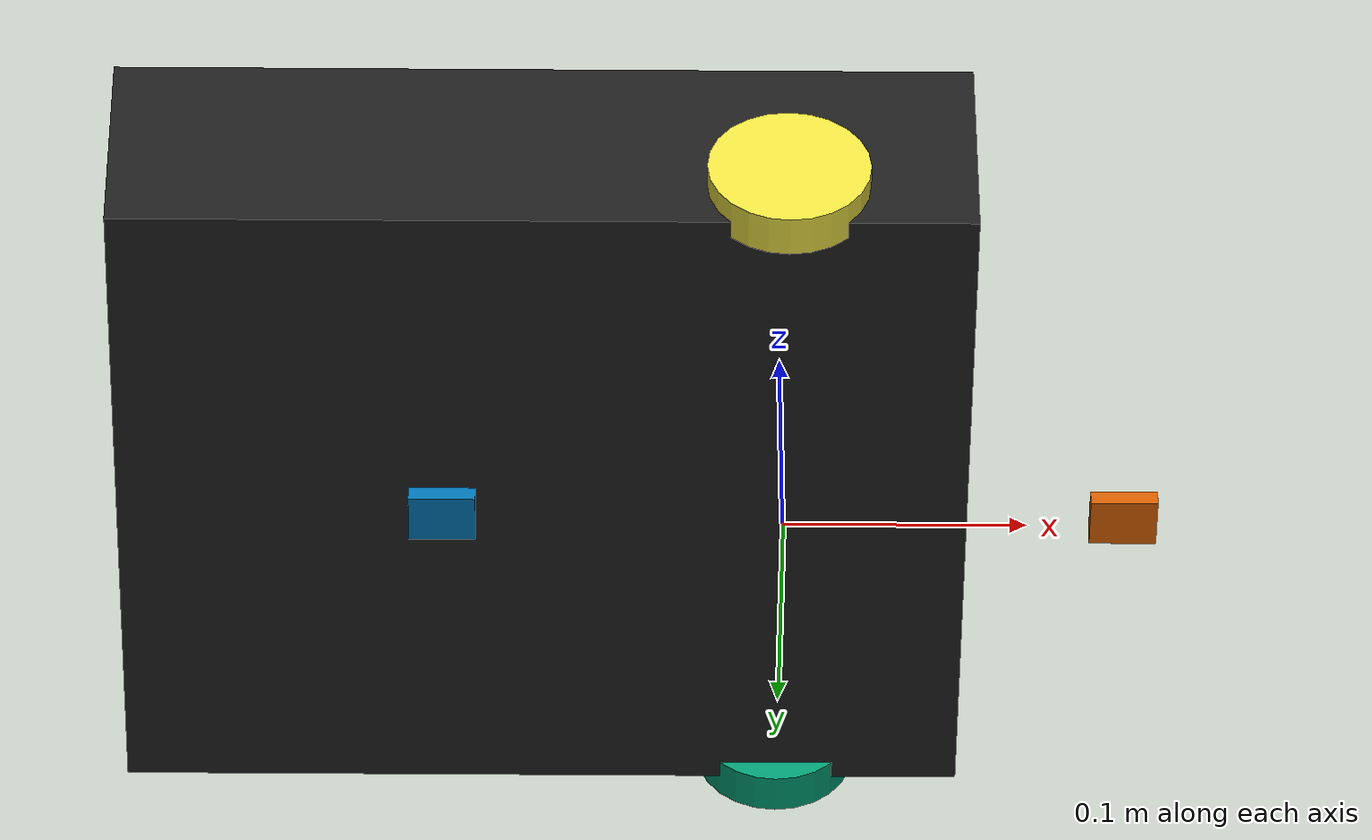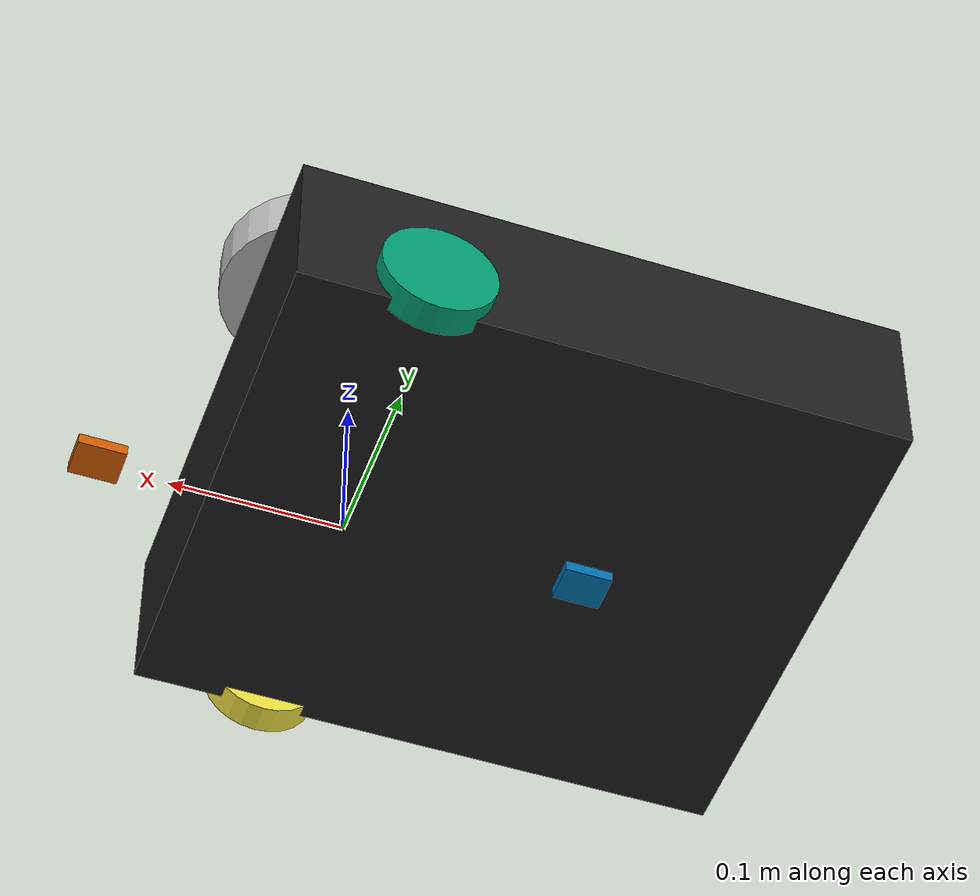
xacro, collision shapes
<?xml version="1.0" ?>
<robot name="yitubot_waffle" xmlns:xacro="http://ros.org/wiki/xacro">
  <xacro:include filename="$(find turtlebot3_description)/urdf/common_properties.xacro"/>
  <xacro:include filename="$(find turtlebot3_description)/urdf/turtlebot3_yitubot.gazebo.xacro"/>

  <link name="base_footprint"/>

  <joint name="base_joint" type="fixed">
    <parent link="base_footprint"/>
    <child link="base_link" />
    <origin xyz="0 0 0.010" rpy="0 0 0"/>
  </joint>

  <link name="base_link">
    <visual>
      <origin xyz="-0.099 0 0.0" rpy="0 0 0"/>
      <geometry>
        <mesh filename="package://turtlebot3_description/meshes/bases/waffle_base.stl" scale="0.00095 0.00095 0.001"/>
      </geometry>
      <material name="light_black"/>
    </visual>

    <collision>
      <origin xyz="-0.099   0 0.047" rpy="0 0 0"/>
      <geometry>
        <box size="0.350 0.310 0.094"/>
      </geometry>
    </collision>

    <inertial>
      <origin xyz="0 0 0" rpy="0 0 0"/>
      <mass value="1.3729096e+00"/>
      <inertia ixx="8.7002718e-03" ixy="-4.7576583e-05" ixz="1.1160499e-04"
               iyy="8.6195418e-03" iyz="-3.5422299e-06"
               izz="1.4612727e-02" />
    </inertial>
  </link>

  <joint name="wheel_left_joint" type="continuous">
    <parent link="base_link"/>
    <child link="wheel_left_link"/>
    <origin xyz="0.0 0.156 0.023" rpy="-1.57 0 0"/>
    <axis xyz="0 0 1"/>
  </joint>

  <link name="wheel_left_link">
    <visual>
      <origin xyz="0 0 0" rpy="1.57 0 0"/>
      <geometry>
        <mesh filename="package://turtlebot3_description/meshes/wheels/left_tire.stl" scale="0.001 0.001 0.001"/>
      </geometry>
      <material name="dark"/>
    </visual>

    <collision>
      <origin xyz="0 0 0" rpy="0 0 0"/>
      <geometry>
        <cylinder length="0.018" radius="0.033"/>
      </geometry>
    </collision>

    <inertial>
      <origin xyz="0 0 0" />
      <mass value="2.8498940e-02" />
      <inertia ixx="1.1175580e-05" ixy="-4.2369783e-11" ixz="-5.9381719e-09"
               iyy="1.1192413e-05" iyz="-1.4400107e-11"
               izz="2.0712558e-05" />
      </inertial>
  </link>

  <joint name="wheel_right_joint" type="continuous">
    <parent link="base_link"/>
    <child link="wheel_right_link"/>
    <origin xyz="0.0 -0.156 0.023" rpy="-1.57 0 0"/>
    <axis xyz="0 0 1"/>
  </joint>

  <link name="wheel_right_link">
    <visual>
      <origin xyz="0 0 0" rpy="1.57 0 0"/>
      <geometry>
        <mesh filename="package://turtlebot3_description/meshes/wheels/right_tire.stl" scale="0.001 0.001 0.001"/>
      </geometry>
      <material name="dark"/>
    </visual>

    <collision>
      <origin xyz="0 0 0" rpy="0 0 0"/>
      <geometry>
        <cylinder length="0.018" radius="0.033"/>
      </geometry>
    </collision>

    <inertial>
      <origin xyz="0 0 0" />
      <mass value="2.8498940e-02" />
      <inertia ixx="1.1175580e-05" ixy="-4.2369783e-11" ixz="-5.9381719e-09"
               iyy="1.1192413e-05" iyz="-1.4400107e-11"
               izz="2.0712558e-05" />
      </inertial>
  </link>

  <joint name="caster_back_joint" type="fixed">
    <parent link="base_link"/>
    <child link="caster_back_link"/>
    <origin xyz="-0.14 0 -0.004" rpy="-1.57 0 0"/>
  </joint>

  <link name="caster_back_link">
    <collision>
      <origin xyz="0 0.001 0" rpy="0 0 0"/>
      <geometry>
        <box size="0.0275 0.0070 0.0225"/>
      </geometry>
    </collision>

    <inertial>
      <origin xyz="0 0 0" />
      <mass value="0.005" />
      <inertia ixx="0.001" ixy="0.0" ixz="0.0"
               iyy="0.001" iyz="0.0"
               izz="0.001" />
    </inertial>
  </link>

  <joint name="caster_front_joint" type="fixed">
    <parent link="base_link"/>
    <child link="caster_front_link"/>
    <origin xyz="0.14 0 -0.004" rpy="-1.57 0 0"/>
  </joint>

  <link name="caster_front_link">
    <collision>
      <origin xyz="0 0.001 0" rpy="0 0 0"/>
      <geometry>
        <box size="0.0275 0.0070 0.0225"/>
      </geometry>
    </collision>

    <inertial>
      <origin xyz="0 0 0" />
      <mass value="0.005" />
      <inertia ixx="0.001" ixy="0.0" ixz="0.0"
               iyy="0.001" iyz="0.0"
               izz="0.001" />
    </inertial>
  </link>
  <joint name="imu_joint" type="fixed">
    <parent link="base_link"/>
    <child link="imu_link"/>
    <origin xyz="-0.099 0 0.0721" rpy="0 0 0"/>
  </joint>

  <link name="imu_link"/>

  <joint name="scan_joint" type="fixed">
    <parent link="base_link"/>
    <child link="base_scan"/>
    <origin xyz="0.01 0 0.204" rpy="0 0 0"/>
  </joint>

  <link name="base_scan">
    <visual>
      <origin xyz="0 0 0" rpy="0 0 0"/>
      <geometry>
        <mesh filename="package://turtlebot3_description/meshes/sensors/lds.stl" scale="0.001 0.001 0.001"/>
      </geometry>
      <material name="dark"/>
    </visual>

    <collision>
      <origin xyz="0.015 0 -0.0065" rpy="0 0 0"/>
      <geometry>
        <cylinder length="0.0315" radius="0.055"/>
      </geometry>
    </collision>

    <inertial>
      <mass value="0.114" />
      <origin xyz="0 0 0" />
      <inertia ixx="0.001" ixy="0.0" ixz="0.0"
               iyy="0.001" iyz="0.0"
               izz="0.001" />
    </inertial>
  </link>

<!-- 15 degrees for sonar -->
  <link name="sonar0_link">
  </link>

  <joint name="sonar_0_joint" type="fixed">
   <origin xyz="-0.019 0.120 0.118" rpy="0 0 1.0472"/>
   <parent link="base_footprint"/>
   <child link="sonar0_link" />
  </joint>

  <link name="sonar1_link"/>

  <joint name="sonar_1_joint" type="fixed">
   <origin xyz="0.011 0 0.118" rpy="0 0 0"/>
   <parent link="base_footprint"/>
   <child link="sonar1_link" />
  </joint>

  <link name="sonar2_link"/>

  <joint name="sonar_2_joint" type="fixed">
   <origin xyz="-0.019 -0.120 0.118" rpy="0 0 -1.0472"/>
   <parent link="base_footprint"/>
   <child link="sonar2_link" />
  </joint>

  <link name="sonar3_link"/>

  <joint name="sonar_3_joint" type="fixed">
   <origin xyz="-0.179 -0.120 0.118" rpy="0 0 -2.0944"/>
   <parent link="base_footprint"/>
   <child link="sonar3_link" />
  </joint>

  <link name="sonar4_link"/>

  <joint name="sonar_4_joint" type="fixed">
   <origin xyz="-0.099 0 0.118" rpy="0 0 3.14"/>
   <parent link="base_footprint"/>
   <child link="sonar4_link" />
  </joint>

  <link name="sonar5_link"/>

  <joint name="sonar_5_joint" type="fixed">
   <origin xyz="-0.179 0.120 0.118" rpy="0 0 2.0944"/>
   <parent link="base_footprint"/>
   <child link="sonar5_link" />
  </joint>

</robot>
